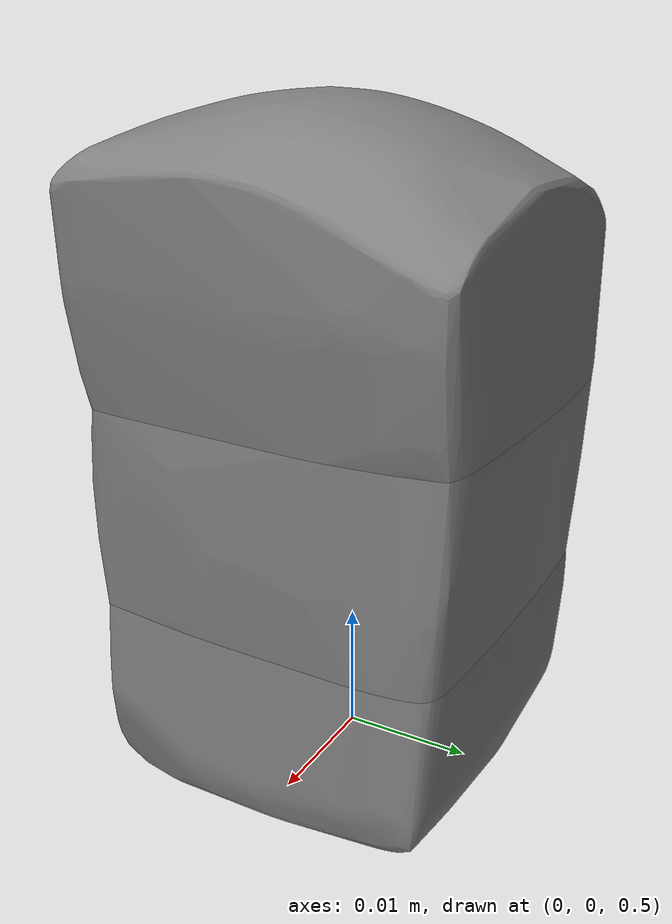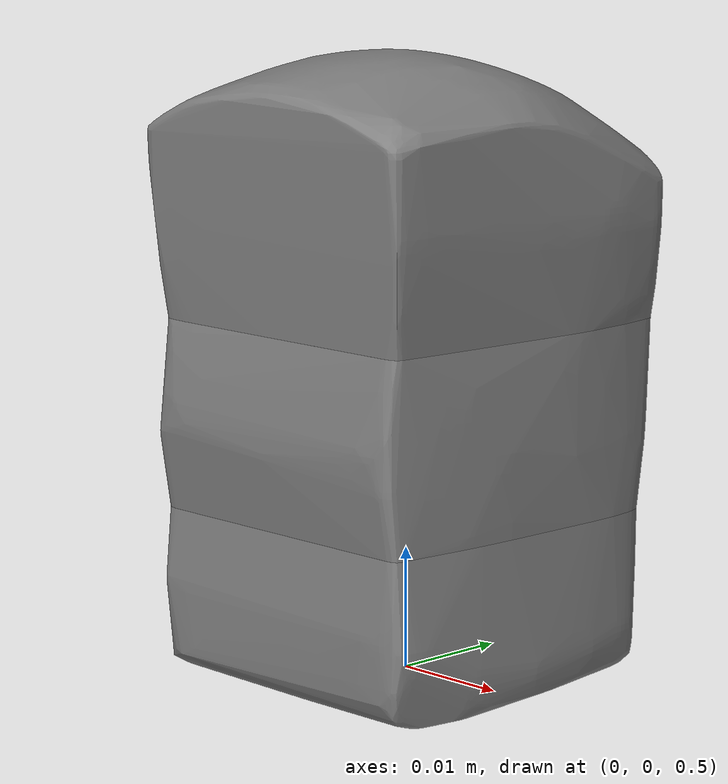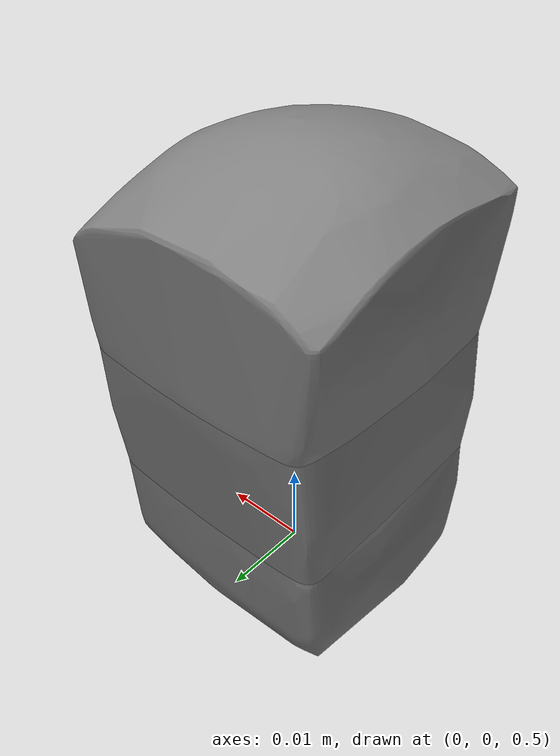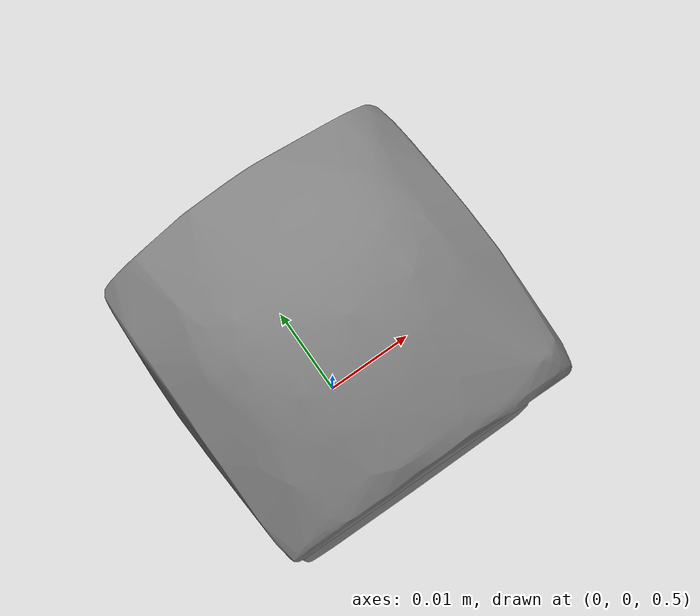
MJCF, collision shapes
<mujoco model="temp_preview_env">
  <compiler angle="radian" meshdir="../meshes/" texturedir="../meshes/"/>

  <default>
    <default class="obj_visual">
      <geom type="mesh" contype="0" conaffinity="0" group="2"/>
    </default>
  </default>

  <asset>
    <mesh name="fixed_meat" content_type="model/obj" file="object/fixed_meat/fixed_meat.obj"/>
    <mesh name="fixed_meat_part_0" content_type="model/obj" file="object/fixed_meat/part_0.obj"/>
    <mesh name="fixed_meat_part_1" content_type="model/obj" file="object/fixed_meat/part_1.obj"/>
    <mesh name="fixed_meat_part_2" content_type="model/obj" file="object/fixed_meat/part_2.obj"/>
  </asset>

  <worldbody>
    <geom name="floor" size="2 2 0.1" type="plane" rgba="0.8 0.8 0.8 1"/>
    <light pos="0 0 3" dir="0 0 -1"/>
    <body name="fixed_meat" pos="0 0 0.5">
      <inertial pos="0 0 0" mass="0.001" diaginertia="2e-05 2e-05 2e-05"/>
      <geom class="obj_visual" mesh="fixed_meat"/>
      <geom type="mesh" mesh="fixed_meat_part_0"/>
      <geom type="mesh" mesh="fixed_meat_part_1"/>
      <geom type="mesh" mesh="fixed_meat_part_2"/>
      <geom type="mesh" rgba="0.5 0.5 0.5 0" mesh="fixed_meat_part_0"/>
      <geom type="mesh" rgba="0.5 0.5 0.5 0" mesh="fixed_meat_part_1"/>
      <geom type="mesh" rgba="0.5 0.5 0.5 0" mesh="fixed_meat_part_2"/>
    </body>
  </worldbody>
</mujoco>
